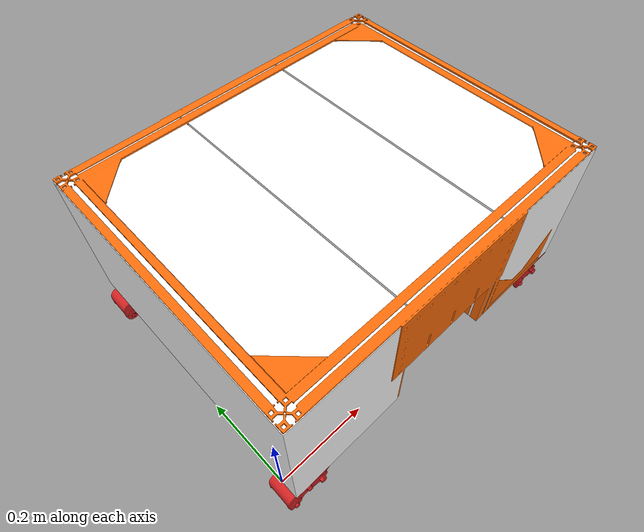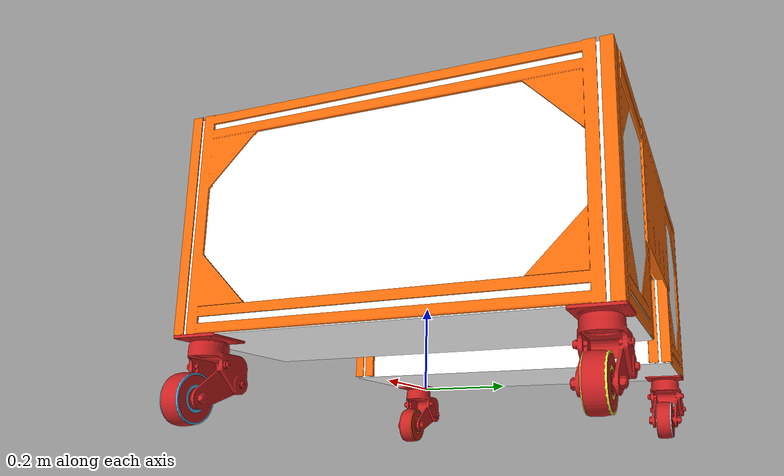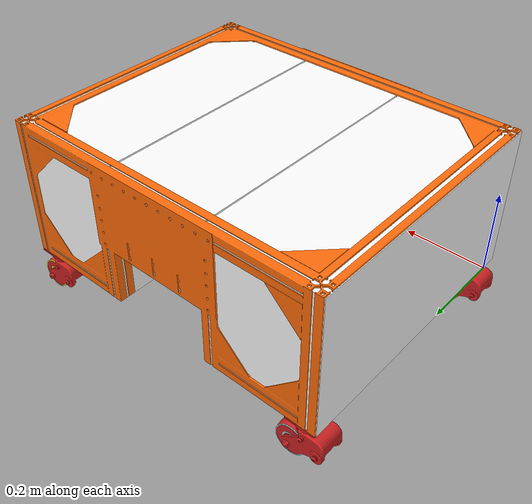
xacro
<?xml version="1.0" ?>
<robot name="m2wr" xmlns:xacro="http://www.ros.org/wiki/xacro">

  <xacro:include filename="$(find at_robot_simulation)/urdf/materials.xacro" />
  <xacro:include filename="$(find at_robot_simulation)/urdf/macros.xacro" />
  <xacro:include filename="$(find at_robot_simulation)/urdf/meshes_macros.xacro" />

<m_link_mesh name="link_chassis"
              m_rpy="0 0 0" m_xyz="0.4015 0.286069 0.182452"
              v_rpy="0 0 0" v_xyz="0 0 0"
              mass="18.97"
              ixx="1.719" ixy="0.002" ixz="0.000000000000008"
              iyy="0.1964" iyz="-0.00035"
              izz="3.082"
              meshfile="ram.dae"
              meshscale="1 1 1"
              material="orange"/>

<gazebo reference="link_chassis">
  <material>Gazebo/Grey</material>
</gazebo>

<xacro:link_collision_box name="link_box_back"
                          rpy="0 0 0"
                          xyz="0.135 0.3244 0.16875"
                          size="0.27 0.648 0.3375 "/>
<xacro:joint_box name="joint_link_box_back"
                 child="link_box_back"
                 parent="link_chassis"
                 origin_xyz="0 -0.04 0" />

<xacro:link_collision_box name="link_box_middle"
                          rpy="0 0 0"
                          xyz="0.125 0.324 0.019"
                          size="0.25 0.648 0.038 "/>
<xacro:joint_box name="joint_link_box_middle"
                 child="link_box_middle"
                 parent="link_chassis"
                 origin_xyz="0.2735 -0.04 0.2995" />

<xacro:link_collision_box name="link_box_front"
                          rpy="0 0 0"
                          xyz="0.135 0.3244 0.16875"
                          size="0.27 0.648 0.3375 "/>
<xacro:joint_box name="joint_link_box_front"
                 child="link_box_front"
                 parent="link_chassis"
                 origin_xyz="0.528 -0.04 0" />

<m_link_mesh name="link_wheel_1"
              m_rpy="0 0 0" m_xyz="-0.039406 -0.000781 0.064593"
              v_rpy="0 0 0" v_xyz="0.039406 0.000781 -0.064593"
              mass="0.447"
              ixx="0.0005542" ixy="-0.00000001863" ixz="-0.0000004319"
              iyy="0.0006282" iyz="0.00000003047"
              izz="0.0004548"
              meshfile="hjul.dae"
              meshscale="1 1 1"
              material="red"/>
<xacro:joint_wheel_attachment name="joint_wheel_1"
                   child="link_wheel_1"
                   parent="link_chassis"
                   origin_xyz="0.0293 -0.001999 -0.036349" />

<xacro:link_collision_wheel name="link_collision_wheel_1"
                          length="0.030"
                          radius="0.036"/>
<xacro:joint_wheel name="joint_collision_wheel_1"
                 child="link_collision_wheel_1"
                 parent="link_wheel_1"
                 origin_xyz="0.044199 0.00046 -0.054651" />

<m_link_mesh name="link_wheel_2"
              m_rpy="0 0 0" m_xyz="-0.039406 -0.000781 0.064593"
              v_rpy="0 0 0" v_xyz="0.039406 0.000781 -0.064593"
              mass="0.447"
              ixx="0.0005542" ixy="-0.00000001863" ixz="-0.0000004319"
              iyy="0.0006282" iyz="0.00000003047"
              izz="0.0004548"
              meshfile="hjul.dae"
              meshscale="1 1 1"
              material="red"/>
<xacro:joint_wheel_attachment name="joint_wheel_2"
                   child="link_wheel_2"
                   parent="link_chassis"
                   origin_xyz="0.029407 0.575001 -0.036361" />

<xacro:link_collision_wheel name="link_collision_wheel_2"
                          length="0.030"
                          radius="0.036"/>
<xacro:joint_wheel name="joint_collision_wheel_2"
                 child="link_collision_wheel_2"
                 parent="link_wheel_2"
                 origin_xyz="0.044199 0.00046 -0.054651" />

<m_link_mesh name="link_wheel_3"
              m_rpy="0 0 0" m_xyz="-0.039406 -0.000781 0.064593"
              v_rpy="0 0 0" v_xyz="0.039406 0.000781 -0.064593"
              mass="0.447"
              ixx="0.0005542" ixy="-0.00000001863" ixz="-0.0000004319"
              iyy="0.0006282" iyz="0.00000003047"
              izz="0.0004548"
              meshfile="hjul.dae"
              meshscale="1 1 1"
              material="red"/>
<xacro:joint_wheel_attachment name="joint_wheel_3"
                   child="link_wheel_3"
                   parent="link_chassis"
                   origin_xyz="0.7563 -0.003799 -0.036361" />

<xacro:link_collision_wheel name="link_collision_wheel_3"
                          length="0.030"
                          radius="0.036"/>
<xacro:joint_wheel name="joint_collision_wheel_3"
                 child="link_collision_wheel_3"
                 parent="link_wheel_3"
                 origin_xyz="0.044199 0.00046 -0.054651" />

<m_link_mesh name="link_wheel_4"
              m_rpy="0 0 0" m_xyz="-0.039406 -0.000781 0.064593"
              v_rpy="0 0 0" v_xyz="0.039406 0.000781 -0.064593"
              mass="0.447"
              ixx="0.0005542" ixy="-0.00000001863" ixz="-0.0000004319"
              iyy="0.0006282" iyz="0.00000003047"
              izz="0.0004548"
              meshfile="hjul.dae"
              meshscale="1 1 1"
              material="red"/>
<xacro:joint_wheel_attachment name="joint_wheel_4"
                   child="link_wheel_4"
                   parent="link_chassis"
                   origin_xyz="0.7563 0.575001 -0.036361" />

<xacro:link_collision_wheel name="link_collision_wheel_4"
                          length="0.030"
                          radius="0.036"/>
<xacro:joint_wheel name="joint_collision_wheel_4"
                 child="link_collision_wheel_4"
                 parent="link_wheel_4"
                 origin_xyz="0.044199 0.00046 -0.054651" />

<gazebo reference="link_box_back">
  <material>Gazebo/GreyTransparent</material>
</gazebo>
<gazebo reference="link_box_front">
  <material>Gazebo/GreyTransparent</material>
</gazebo>
<gazebo reference="link_box_middle">
  <material>Gazebo/GreyTransparent</material>
</gazebo>

<gazebo reference="link_wheel_1">
  <material>Gazebo/Orange</material>
</gazebo>
<gazebo reference="link_wheel_2">
  <material>Gazebo/Orange</material>
</gazebo>
<gazebo reference="link_wheel_3">
  <material>Gazebo/Orange</material>
</gazebo>
<gazebo reference="link_wheel_4">
  <material>Gazebo/Orange</material>
</gazebo>

</robot>

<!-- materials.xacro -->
<robot>
  <material name="black">
    <color rgba="0.0 0.0 0.0 1.0"/>
  </material>
  <material name="blue">
    <color rgba="0.203125 0.23828125 0.28515625 1.0"/>
  </material>
  <material name="green">
    <color rgba="0.0 0.8 0.0 1.0"/>
  </material>
  <material name="grey">
    <color rgba="0.2 0.2 0.2 1.0"/>
  </material>
  <material name="orange">
    <color rgba="1.0 0.423529411765 0.0392156862745 1.0"/>
  </material>
  <material name="brown">
    <color rgba="0.870588235294 0.811764705882 0.764705882353 1.0"/>
  </material>
  <material name="red">
    <color rgba="0.80078125 0.12890625 0.1328125 1.0"/>
  </material>
  <material name="white">
    <color rgba="1.0 1.0 1.0 1.0"/>
  </material>
  <material name="transparent">
    <color rgba="1.0 1.0 1.0 0.01"/>
  </material>
</robot>

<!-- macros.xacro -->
<robot>

   <macro name="joint_wheel" params="name child parent origin_xyz">
      <joint name="${name}" type="continuous">
        <origin rpy="0 0 0" xyz="${origin_xyz}"/>
        <child link="${child}"/>
        <parent link="${parent}"/>
        <axis rpy="0 0 0" xyz="0 1 0"/>
        <limit effort="10000" velocity="1000"/>
        <joint_properties damping="1.0" friction="1.0"/>
      </joint>
    </macro>

    <macro name="link_collision_box" params="name xyz rpy size">
        <link name="${name}">
            <inertial>
              <mass value="0"/>
              <origin rpy="${rpy}" xyz="${xyz}"/>
              <inertia ixx="0" ixy="0" ixz="0" iyy="0" iyz="0" izz="0"/>
            </inertial>
            <collision name="link_collision_box_collision">
              <origin rpy="${rpy}" xyz="${xyz}"/>
              <geometry>
                <box size="${size}"/>
              </geometry>
            </collision>
            <visual name="${name}_visual">
              <origin rpy="${rpy}" xyz="${xyz}"/>
              <geometry>
                <box size="${size}"/>
              </geometry>
              <material name="transparent"/>
            </visual>
        </link>
    </macro>

    <macro name="joint_box" params="name child parent origin_xyz">
      <joint name="${name}" type="fixed">
        <origin rpy="0 0 0" xyz="${origin_xyz}"/>
        <child link="${child}"/>
        <parent link="${parent}"/>
        <axis rpy="0 0 0" xyz="0 0 0"/>
      </joint>
    </macro>

    <macro name="joint_wheel_attachment" params="name child parent origin_xyz">
      <joint name="${name}" type="continuous">
        <origin rpy="0 0 0" xyz="${origin_xyz}"/>
        <child link="${child}"/>
        <parent link="${parent}"/>
        <axis rpy="0 0 0" xyz="0 0 1"/>
      </joint>
    </macro>

    <macro name="link_collision_wheel" params="name length radius">
        <link name="${name}">
            <inertial>
              <mass value="0.225"/>
              <origin rpy="0 1.5707 1.5707" xyz="0 0 0"/>
              <inertia ixx="0.00007564" ixy="0" ixz="0" iyy="0.0001197" iyz="0" izz="0.00007563"/>
            </inertial>
            <collision name="${name}_collision">
              <origin rpy="0 1.5707 1.5707" xyz="0 0 0"/>
              <geometry>
                <cylinder length="${length}" radius="${radius}"/>
              </geometry>
            </collision>
            <visual name="${name}_visual">
              <origin rpy="0 1.5707 1.5707" xyz="0 0 0"/>
              <geometry>
                <cylinder length="${length}" radius="${radius}"/>
              </geometry>
            </visual>
        </link>
    </macro>

</robot>

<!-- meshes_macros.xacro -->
<robot xmlns:xacro="http://www.ros.org/wiki/xacro">

<xacro:macro name="m_link_mesh" params="name m_xyz m_rpy v_xyz v_rpy meshfile meshscale mass ixx ixy ixz iyy iyz izz material">
    <link name="${name}">
    <pose>0 0 0.5 0 0 0</pose>
      <inertial>
        <mass value="${mass}" />
        <origin rpy="${m_rpy}" xyz="${m_xyz}" />
        <inertia ixx="${ixx}" ixy="${ixy}" ixz="${ixz}" iyy="${iyy}" iyz="${iyz}" izz="${izz}" />
      </inertial>
      <visual>
        <origin rpy="${v_rpy}" xyz="${v_xyz}" />
        <geometry>
          <mesh filename="package://at_robot_simulation/meshes/${meshfile}" scale="${meshscale}"/>
        </geometry>
        <material name="${material}"/>
      </visual>
    </link>
  </xacro:macro>

</robot>
